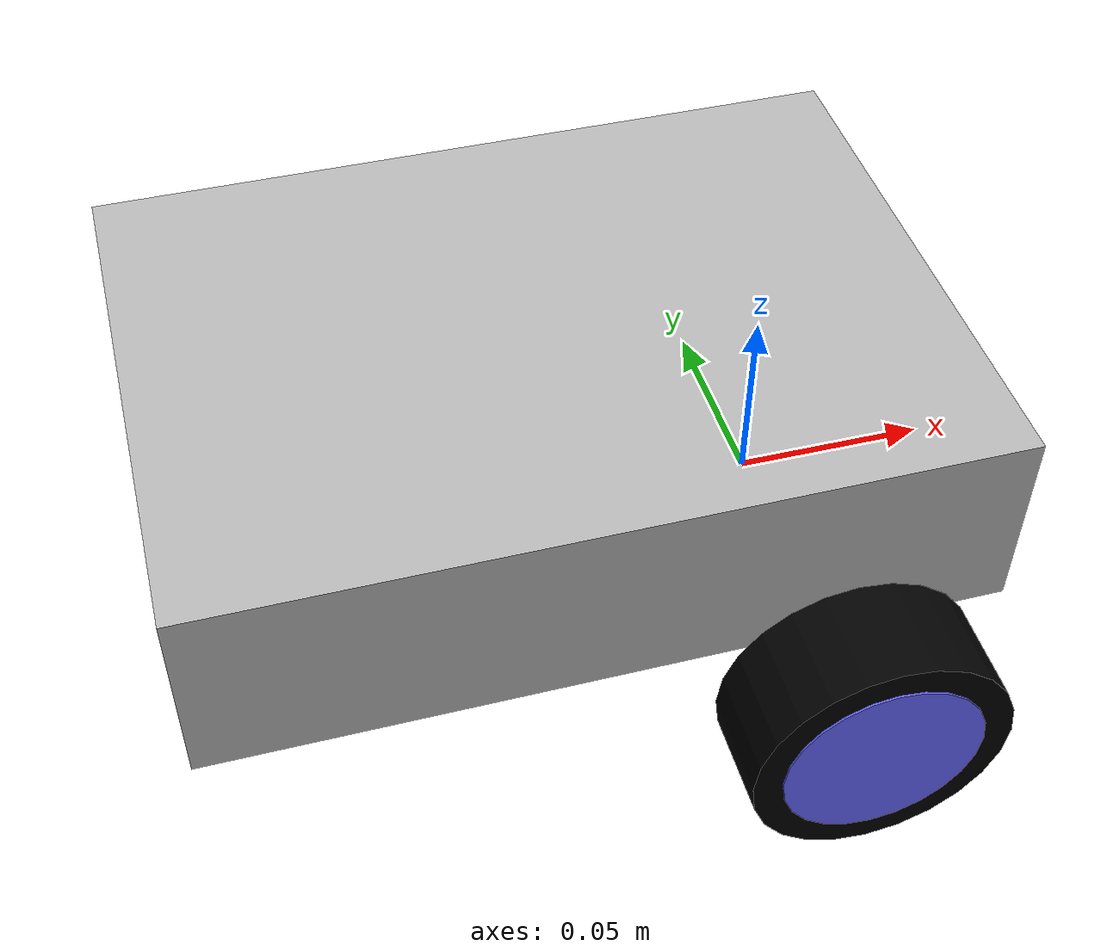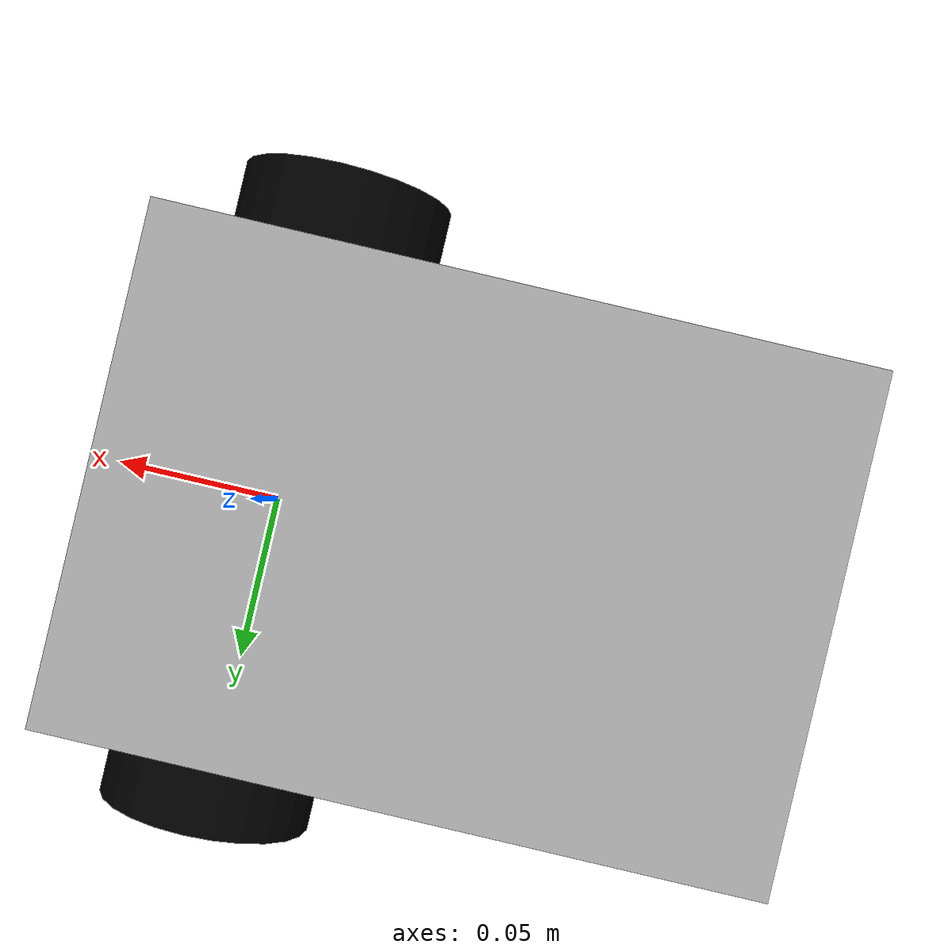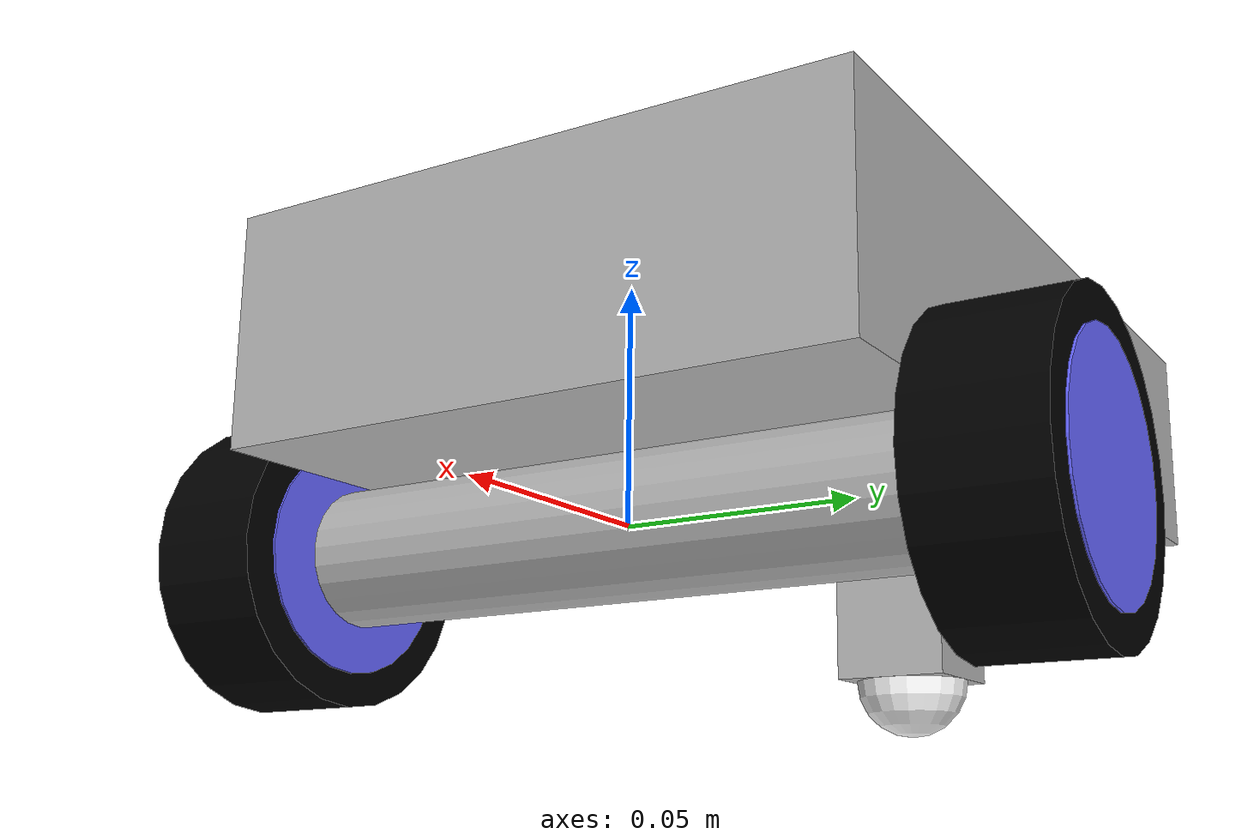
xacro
<?xml version="1.0"?>
<robot xmlns:xacro="http://www.ros.org/wiki/xacro" >

    <!--makro pro barvicky a vypocet inertials-->
    <xacro:include filename="inertials_colors.xacro"/>

    <!-- KONSTANTY >> realne rozmery -->

    <xacro:property name="chassis_length" value="0.195"/>
    <xacro:property name="chassis_width" value="0.140"/>
    <xacro:property name="chassis_height" value="0.05"/>
    <xacro:property name="chassis_mass" value="1.5"/>

    <xacro:property name="main_wheel_radius" value="0.0323"/>
    <xacro:property name="main_wheel_thickness" value="0.026"/>
    <xacro:property name="main_wheel_mass" value="0.1"/>

    <xacro:property name="main_wheel_offset_x" value="0.155"/>
    <xacro:property name="main_wheel_offset_y" value="0.085"/>
    <xacro:property name="main_wheel_offset_z" value="-0.016"/>
    <xacro:property name="caster_wheeel_radius" value="0.015"/>
    <xacro:property name="caster_wheeel_mass" value="0.04"/>
    <xacro:property name="caster_wheeel_offset_x" value="0.015"/>
    <xacro:property name="caster_wheeel_offset_z" value="${main_wheel_offset_z - main_wheel_radius + caster_wheeel_radius}"/>

    <!-- BASE LINK >> stred mezi hlavnimi koli-->

    <link name="base_link">

    </link>

    <!-- BASE_FOOTPRINT >> link pro navigaci/lokalizaci -->

    <joint name="base_footprint_joint" type="fixed">
        <parent link="base_link"/>
        <child link="base_footprint"/>
        <origin xyz="0 0 0" rpy="0 0 0"/>
    </joint>

    <link name="base_footprint">
    </link>

    <!-- CHASSIS LINK >> link na konci uprostred robota -->

    <joint name="chassis_joint" type="fixed">
        <parent link="base_link"/>
        <child link="chassis"/>
        <origin xyz="${-main_wheel_offset_x} 0 ${-main_wheel_offset_z}"/>
    </joint>

    <link name="chassis">
        <visual>
            <origin xyz="${chassis_length/2} 0 ${chassis_height/2}"/>
            <geometry>
                <box size="${chassis_length} ${chassis_width} ${chassis_height}"/>
            </geometry>
            <material name="gray"/>
        </visual>
        <!-- sloupek k podpurnemu kolecku -->
        <visual>
            <origin xyz="${caster_wheeel_offset_x} 0 ${caster_wheeel_offset_z/2}"/>
            <geometry>
                <box size="${caster_wheeel_offset_x*2} ${caster_wheeel_offset_x*2} ${caster_wheeel_offset_z}"/>
            </geometry>
            <material name="gray"/>
        </visual>
        <!-- valec mezi hlavnimi koly pro simulaci motoru -->
        <visual>
            <origin xyz="${main_wheel_offset_x} 0 ${main_wheel_offset_z}" rpy="${pi/2} 0 0" />
            <geometry>
                <cylinder radius="0.015" length="${chassis_width}"/>
            </geometry>
            <material name="gray"/>
        </visual>
        <collision>
            <origin xyz="${chassis_length/2} 0 ${chassis_height/2}"/>
            <geometry>
                <box size="${chassis_length} ${chassis_width} ${chassis_height}"/>
            </geometry>
        </collision>
        <xacro:inertial_box mass="${chassis_mass}" x="${chassis_length}" y="${chassis_width}" z="${chassis_height}">
            <origin xyz="${chassis_length/2} 0 ${chassis_height/2}" rpy="0 0 0"/>
        </xacro:inertial_box>
    </link>

    <gazebo reference="chassis">
        <material>Gazebo/Gray</material>
    </gazebo>

    <!-- LEFT WHEEL LINK  >> link posunuty od base linku-->

    <joint name="left_wheel_joint" type="continuous">
        <parent link="base_link"/>
        <child link="left_wheel"/>
        <origin xyz="0 ${main_wheel_offset_y} 0" rpy="-${pi/2} 0 0" />
        <axis xyz="0 0 1"/>
    </joint>

    <joint name="left_wheel_joint2" type="fixed">
        <parent link="base_link"/>
        <child link="left_wheel2"/>
        <origin xyz="0 ${main_wheel_offset_y} 0" rpy="-${pi/2} 0 0" />
    </joint>

    <!-- atrapa rafku kola, netoci se, jen kvuli vizualu -->

    <link name="left_wheel2">
        <visual>
            <geometry>
                <cylinder radius="0.025" length="${main_wheel_thickness + 0.001}"/>
            </geometry>
            <material name="blue"/>
        </visual>
    </link>
    <gazebo reference="left_wheel2">
        <material>Gazebo/Blue</material>
    </gazebo>

    <link name="left_wheel">
        <visual>
            <geometry>
                <cylinder radius="${main_wheel_radius}" length="${main_wheel_thickness}"/>
            </geometry>
            <material name="black"/>
        </visual>
        <collision>
            <geometry>
                <sphere radius="${main_wheel_radius}"/>
            </geometry>
        </collision>
        <xacro:inertial_cylinder mass="${main_wheel_mass}" length="${main_wheel_thickness}" radius="${main_wheel_radius}">
            <origin xyz="0 0 0" rpy="0 0 0"/>
        </xacro:inertial_cylinder>
    </link>

    <gazebo reference="left_wheel">
        <material>Gazebo/Black</material>
    </gazebo>

    <!-- RIGHT WHEEL LINK >> link posunuty od base linku-->

    <joint name="right_wheel_joint" type="continuous">
        <parent link="base_link"/>
        <child link="right_wheel"/>
        <origin xyz="0 ${-main_wheel_offset_y} 0" rpy="${pi/2} 0 0" />
        <axis xyz="0 0 -1"/>
    </joint>

    <joint name="right_wheel_joint2" type="fixed">
        <parent link="base_link"/>
        <child link="right_wheel2"/>
        <origin xyz="0 ${-main_wheel_offset_y} 0" rpy="${pi/2} 0 0" />
    </joint>

    <!-- atrapa rafku kola, netoci se, jen kvuli vizualu -->

    <link name="right_wheel2">
        <visual>
            <geometry>
                <cylinder radius="0.025" length="${main_wheel_thickness + 0.001 }"/>
            </geometry>
            <material name="blue"/>
        </visual>
    </link>
    <gazebo reference="right_wheel2">
        <material>Gazebo/Blue</material>
    </gazebo>

    <link name="right_wheel">
        <visual>
            <geometry>
                <cylinder radius="${main_wheel_radius}" length="${main_wheel_thickness}"/>
            </geometry>
            <material name="black"/>
        </visual>
        <collision>
            <geometry>
                <sphere radius="${main_wheel_radius}"/>
            </geometry>
        </collision>
        <xacro:inertial_cylinder mass="${main_wheel_mass}" length="${main_wheel_thickness}" radius="${main_wheel_radius}">
            <origin xyz="0 0 0" rpy="0 0 0"/>
        </xacro:inertial_cylinder>
    </link>

    <gazebo reference="right_wheel">
        <material>Gazebo/Black</material>
    </gazebo>

    <!-- CASTER WHEEL LINK >> pomocne kolecko -->

    <joint name="caster_wheel_joint" type="fixed">
        <parent link="chassis"/>
        <child link="caster_wheel"/>
        <origin xyz="${caster_wheeel_offset_x} 0 ${caster_wheeel_offset_z}"/>
    </joint>

    <link name="caster_wheel">
        <visual>
            <geometry>
                <sphere radius="${caster_wheeel_radius}"/>
            </geometry>
            <material name="white"/>
        </visual>
        <collision>
            <geometry>
                <sphere radius="${caster_wheeel_radius}"/>
            </geometry>
        </collision>
        <xacro:inertial_sphere mass="${caster_wheeel_mass}" radius="${caster_wheeel_radius}">
            <origin xyz="0 0 0" rpy="0 0 0"/>
        </xacro:inertial_sphere>
    </link>

    <gazebo reference="caster_wheel">
        <material>Gazebo/White</material>
        <mu1 value="0.001"/>
        <mu2 value="0.001"/>
    </gazebo>

</robot>

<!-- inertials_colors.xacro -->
<robot xmlns:xacro="http://www.ros.org/wiki/xacro" >

    <!-- BARVY >> deklarace barev pro rviz -->

    <material name="white">
        <color rgba="1 1 1 1" />
    </material>

    <material name="orange">
        <color rgba="1 0.3 0.1 1"/>
    </material>

    <material name="blue">
        <color rgba="0.4 0.4 1 1"/>
    </material>

    <material name="black">
        <color rgba="0 0 0 1"/>
    </material>

    <material name="red">
        <color rgba="1 0 0 1"/>
    </material>

    <material name="gray">
    <color rgba="0.7 0.7 0.7 1"/>
    </material>

    <material name="green">
    <color rgba="0 0.7 0 1"/>
    </material>

    <!-- INERTIALS >> vypocet hmotnosti teles -->

    <xacro:macro name="inertial_sphere" params="mass radius *origin">
        <inertial>
            <xacro:insert_block name="origin"/>
            <mass value="${mass}" />
            <inertia ixx="${(2/5) * mass * (radius*radius)}" ixy="0.0" ixz="0.0"
                    iyy="${(2/5) * mass * (radius*radius)}" iyz="0.0"
                    izz="${(2/5) * mass * (radius*radius)}" />
        </inertial>
    </xacro:macro>

    <xacro:macro name="inertial_box" params="mass x y z *origin">
        <inertial>
            <xacro:insert_block name="origin"/>
            <mass value="${mass}" />
            <inertia ixx="${(1/12) * mass * (y*y+z*z)}" ixy="0.0" ixz="0.0"
                    iyy="${(1/12) * mass * (x*x+z*z)}" iyz="0.0"
                    izz="${(1/12) * mass * (x*x+y*y)}" />
        </inertial>
    </xacro:macro>

    <xacro:macro name="inertial_cylinder" params="mass length radius *origin">
        <inertial>
            <xacro:insert_block name="origin"/>
            <mass value="${mass}" />
            <inertia ixx="${(1/12) * mass * (3*radius*radius + length*length)}" ixy="0.0" ixz="0.0"
                    iyy="${(1/12) * mass * (3*radius*radius + length*length)}" iyz="0.0"
                    izz="${(1/2) * mass * (radius*radius)}" />
        </inertial>
    </xacro:macro>

</robot>
